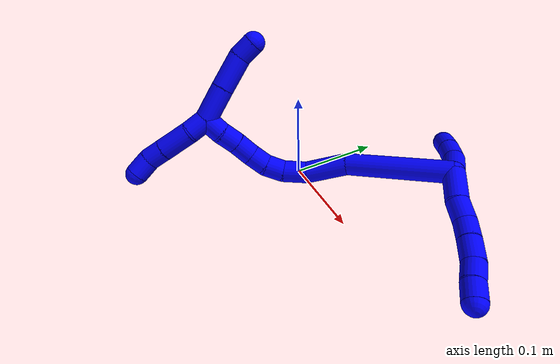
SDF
<sdf version="1.7">
 <world name="default">
  <model name="photoneo_s_sensor">
   <static>1</static>
   <pose>0 0 2 1.57079 1.57079 3.14159</pose>
   <link name="link">
    <inertial><mass>0.1</mass></inertial>
    <sensor name="sensor" type="depth">
     <update_rate>30</update_rate>
     <camera>
      <horizontal_fov>1.22</horizontal_fov>
      <image><width>1920</width><height>1200</height><format>B8G8R8</format></image>
      <clip><near>0.1</near><far>4</far></clip>
      <depth_camera><output>points</output></depth_camera>
     </camera>
     <plugin name="camera_plugin" filename="libgazebo_ros_depth_camera.so">
      <baseline>0.2</baseline>
      <alwaysOn>1</alwaysOn>
      <updateRate>0.0</updateRate>
      <cameraName>camera_ir</cameraName>
      <imageTopicName>/camera/color/image_raw</imageTopicName>
      <cameraInfoTopicName>/camera/color/camera_info</cameraInfoTopicName>
      <depthImageTopicName>/camera/depth/image_raw</depthImageTopicName>
      <depthImageCameraInfoTopicName>/camera/depth/camera_info</depthImageCameraInfoTopicName>
      <pointCloudTopicName>/camera/depth/points</pointCloudTopicName>
      <frameName>fr_optical</frameName>
      <pointCloudCutoff>0.1</pointCloudCutoff>
      <pointCloudCutoffMax>2.0</pointCloudCutoffMax>
      <distortionK1>0</distortionK1>
      <distortionK2>0</distortionK2>
      <distortionK3>0</distortionK3>
      <distortionT1>0</distortionT1>
      <distortionT2>0</distortionT2>
      <CxPrime>0</CxPrime>
      <Cx>0</Cx>
      <Cy>0</Cy>
      <focalLength>0</focalLength>
      <hackBaseline>0</hackBaseline>
     </plugin>
    </sensor>
   </link>
  </model>
  <model name="bin">
   <static>1</static>
   <link name="bottom">
    <collision name="collision-bottom">
     <pose>0 0 -0.01 0 -0 0</pose>
     <geometry><box><size>0.8 0.6 0.02</size></box></geometry>
     <surface>
      <friction><ode><mu>100</mu><mu2>100</mu2></ode></friction>
      <contact><collide_bitmask>65535</collide_bitmask></contact>
     </surface>
    </collision>
   </link>
   <link name="west_wall">
    <collision name="collision-west_wall">
     <pose>-0.41 0 0.1 0 -0 0</pose>
     <geometry><box><size>0.02 0.6 0.2</size></box></geometry>
     <surface>
      <friction><ode><mu>100</mu><mu2>100</mu2></ode></friction>
      <contact><collide_bitmask>65535</collide_bitmask></contact>
     </surface>
    </collision>
   </link>
   <link name="east_wall">
    <collision name="collision-east_wall">
     <pose>0.41 0 0.1 0 -0 0</pose>
     <geometry><box><size>0.02 0.6 0.2</size></box></geometry>
     <surface>
      <friction><ode><mu>100</mu><mu2>100</mu2></ode></friction>
      <contact><collide_bitmask>65535</collide_bitmask></contact>
     </surface>
    </collision>
   </link>
   <link name="south_wall">
    <collision name="collision-south_wall">
     <pose>0 -0.31 0.1 0 -0 0</pose>
     <geometry><box><size>0.8 0.02 0.2</size></box></geometry>
     <surface>
      <friction><ode><mu>100</mu><mu2>100</mu2></ode></friction>
      <contact><collide_bitmask>65535</collide_bitmask></contact>
     </surface>
    </collision>
   </link>
   <link name="north_wall">
    <collision name="collision-north_wall">
     <pose>0 0.31 0.1 0 -0 0</pose>
     <geometry><box><size>0.8 0.02 0.2</size></box></geometry>
     <surface>
      <friction><ode><mu>100</mu><mu2>100</mu2></ode></friction>
      <contact><collide_bitmask>65535</collide_bitmask></contact>
     </surface>
    </collision>
   </link>
  </model>
  <model name="1">
   <static>0</static>
   <link name="1">
    <collision name="collision-cylinder-e_1_2_8">
     <pose>0.006346 -0.000669 0.016731 0.039956 0.362286 0.007319</pose>
     <geometry><cylinder><radius>0.0125</radius><length>0.035814</length></cylinder></geometry>
     <surface>
      <friction><ode><mu>1.16</mu><mu2>1.16</mu2><slip1>0</slip1><slip2>0</slip2></ode></friction>
      <contact><ode><kp>1e+06</kp><kd>1</kd><max_vel>0</max_vel><min_depth>0.001</min_depth></ode></contact>
     </surface>
    </collision>
    <visual name="visual-cylinder-e_1_2_8">
     <pose>0.006346 -0.000669 0.016731 0.039956 0.362286 0.007319</pose>
     <geometry><cylinder><radius>0.0125</radius><length>0.035814</length></cylinder></geometry>
     <material><ambient>0 0 1 1</ambient></material>
    </visual>
    <collision name="collision-cylinder-e_2_8_9">
     <pose>0.018428 0.000308 0.044146 -0.152867 0.487787 -0.03811</pose>
     <geometry><cylinder><radius>0.0125</radius><length>0.024473</length></cylinder></geometry>
     <surface>
      <friction><ode><mu>1.16</mu><mu2>1.16</mu2><slip1>0</slip1><slip2>0</slip2></ode></friction>
      <contact><ode><kp>1e+06</kp><kd>1</kd><max_vel>0</max_vel><min_depth>0.001</min_depth></ode></contact>
     </surface>
    </collision>
    <visual name="visual-cylinder-e_2_8_9">
     <pose>0.018428 0.000308 0.044146 -0.152867 0.487787 -0.03811</pose>
     <geometry><cylinder><radius>0.0125</radius><length>0.024473</length></cylinder></geometry>
     <material><ambient>0 0 1 1</ambient></material>
    </visual>
    <collision name="collision-cylinder-e_3_9_10">
     <pose>0.026572 0.002994 0.065812 -0.094394 0.215057 -0.010197</pose>
     <geometry><cylinder><radius>0.0125</radius><length>0.022585</length></cylinder></geometry>
     <surface>
      <friction><ode><mu>1.16</mu><mu2>1.16</mu2><slip1>0</slip1><slip2>0</slip2></ode></friction>
      <contact><ode><kp>1e+06</kp><kd>1</kd><max_vel>0</max_vel><min_depth>0.001</min_depth></ode></contact>
     </surface>
    </collision>
    <visual name="visual-cylinder-e_3_9_10">
     <pose>0.026572 0.002994 0.065812 -0.094394 0.215057 -0.010197</pose>
     <geometry><cylinder><radius>0.0125</radius><length>0.022585</length></cylinder></geometry>
     <material><ambient>0 0 1 1</ambient></material>
    </visual>
    <collision name="collision-cylinder-e_4_10_11">
     <pose>0.032382 0.004478 0.08911 -0.036051 0.269207 -0.004883</pose>
     <geometry><cylinder><radius>0.0125</radius><length>0.025567</length></cylinder></geometry>
     <surface>
      <friction><ode><mu>1.16</mu><mu2>1.16</mu2><slip1>0</slip1><slip2>0</slip2></ode></friction>
      <contact><ode><kp>1e+06</kp><kd>1</kd><max_vel>0</max_vel><min_depth>0.001</min_depth></ode></contact>
     </surface>
    </collision>
    <visual name="visual-cylinder-e_4_10_11">
     <pose>0.032382 0.004478 0.08911 -0.036051 0.269207 -0.004883</pose>
     <geometry><cylinder><radius>0.0125</radius><length>0.025567</length></cylinder></geometry>
     <material><ambient>0 0 1 1</ambient></material>
    </visual>
    <collision name="collision-cylinder-e_5_11_12">
     <pose>0.036731 0.003902 0.111911 0.097014 0.089825 0.004363</pose>
     <geometry><cylinder><radius>0.0125</radius><length>0.021157</length></cylinder></geometry>
     <surface>
      <friction><ode><mu>1.16</mu><mu2>1.16</mu2><slip1>0</slip1><slip2>0</slip2></ode></friction>
      <contact><ode><kp>1e+06</kp><kd>1</kd><max_vel>0</max_vel><min_depth>0.001</min_depth></ode></contact>
     </surface>
    </collision>
    <visual name="visual-cylinder-e_5_11_12">
     <pose>0.036731 0.003902 0.111911 0.097014 0.089825 0.004363</pose>
     <geometry><cylinder><radius>0.0125</radius><length>0.021157</length></cylinder></geometry>
     <material><ambient>0 0 1 1</ambient></material>
    </visual>
    <collision name="collision-cylinder-e_6_12_6">
     <pose>0.039749 0.002607 0.132384 0.027414 0.204215 0.002809</pose>
     <geometry><cylinder><radius>0.0125</radius><length>0.020405</length></cylinder></geometry>
     <surface>
      <friction><ode><mu>1.16</mu><mu2>1.16</mu2><slip1>0</slip1><slip2>0</slip2></ode></friction>
      <contact><ode><kp>1e+06</kp><kd>1</kd><max_vel>0</max_vel><min_depth>0.001</min_depth></ode></contact>
     </surface>
    </collision>
    <visual name="visual-cylinder-e_6_12_6">
     <pose>0.039749 0.002607 0.132384 0.027414 0.204215 0.002809</pose>
     <geometry><cylinder><radius>0.0125</radius><length>0.020405</length></cylinder></geometry>
     <material><ambient>0 0 1 1</ambient></material>
    </visual>
    <collision name="collision-cylinder-e_1_2_13">
     <pose>0.007604 -0.00314 -0.023133 3.00669 0.31488 2.33695</pose>
     <geometry><cylinder><radius>0.0125</radius><length>0.049105</length></cylinder></geometry>
     <surface>
      <friction><ode><mu>1.16</mu><mu2>1.16</mu2><slip1>0</slip1><slip2>0</slip2></ode></friction>
      <contact><ode><kp>1e+06</kp><kd>1</kd><max_vel>0</max_vel><min_depth>0.001</min_depth></ode></contact>
     </surface>
    </collision>
    <visual name="visual-cylinder-e_1_2_13">
     <pose>0.007604 -0.00314 -0.023133 3.00669 0.31488 2.33695</pose>
     <geometry><cylinder><radius>0.0125</radius><length>0.049105</length></cylinder></geometry>
     <material><ambient>0 0 1 1</ambient></material>
    </visual>
    <collision name="collision-cylinder-e_2_13_14">
     <pose>0.015385 -0.009791 -0.060077 2.8926 0.012424 0.099201</pose>
     <geometry><cylinder><radius>0.0125</radius><length>0.028501</length></cylinder></geometry>
     <surface>
      <friction><ode><mu>1.16</mu><mu2>1.16</mu2><slip1>0</slip1><slip2>0</slip2></ode></friction>
      <contact><ode><kp>1e+06</kp><kd>1</kd><max_vel>0</max_vel><min_depth>0.001</min_depth></ode></contact>
     </surface>
    </collision>
    <visual name="visual-cylinder-e_2_13_14">
     <pose>0.015385 -0.009791 -0.060077 2.8926 0.012424 0.099201</pose>
     <geometry><cylinder><radius>0.0125</radius><length>0.028501</length></cylinder></geometry>
     <material><ambient>0 0 1 1</ambient></material>
    </visual>
    <collision name="collision-cylinder-e_3_14_5">
     <pose>0.015821 -0.01702 -0.084445 2.80308 0.023171 0.135388</pose>
     <geometry><cylinder><radius>0.0125</radius><length>0.022394</length></cylinder></geometry>
     <surface>
      <friction><ode><mu>1.16</mu><mu2>1.16</mu2><slip1>0</slip1><slip2>0</slip2></ode></friction>
      <contact><ode><kp>1e+06</kp><kd>1</kd><max_vel>0</max_vel><min_depth>0.001</min_depth></ode></contact>
     </surface>
    </collision>
    <visual name="visual-cylinder-e_3_14_5">
     <pose>0.015821 -0.01702 -0.084445 2.80308 0.023171 0.135388</pose>
     <geometry><cylinder><radius>0.0125</radius><length>0.022394</length></cylinder></geometry>
     <material><ambient>0 0 1 1</ambient></material>
    </visual>
    <collision name="collision-cylinder-e_1_2_15">
     <pose>-0.02603 -0.052419 -0.002749 1.62319 -0.460362 -0.484201</pose>
     <geometry><cylinder><radius>0.0125</radius><length>0.117181</length></cylinder></geometry>
     <surface>
      <friction><ode><mu>1.16</mu><mu2>1.16</mu2><slip1>0</slip1><slip2>0</slip2></ode></friction>
      <contact><ode><kp>1e+06</kp><kd>1</kd><max_vel>0</max_vel><min_depth>0.001</min_depth></ode></contact>
     </surface>
    </collision>
    <visual name="visual-cylinder-e_1_2_15">
     <pose>-0.02603 -0.052419 -0.002749 1.62319 -0.460362 -0.484201</pose>
     <geometry><cylinder><radius>0.0125</radius><length>0.117181</length></cylinder></geometry>
     <material><ambient>0 0 1 1</ambient></material>
    </visual>
    <collision name="collision-cylinder-e_2_15_16">
     <pose>-0.058532 -0.127364 -0.001132 1.37937 -0.274894 -0.227191</pose>
     <geometry><cylinder><radius>0.0125</radius><length>0.047682</length></cylinder></geometry>
     <surface>
      <friction><ode><mu>1.16</mu><mu2>1.16</mu2><slip1>0</slip1><slip2>0</slip2></ode></friction>
      <contact><ode><kp>1e+06</kp><kd>1</kd><max_vel>0</max_vel><min_depth>0.001</min_depth></ode></contact>
     </surface>
    </collision>
    <visual name="visual-cylinder-e_2_15_16">
     <pose>-0.058532 -0.127364 -0.001132 1.37937 -0.274894 -0.227191</pose>
     <geometry><cylinder><radius>0.0125</radius><length>0.047682</length></cylinder></geometry>
     <material><ambient>0 0 1 1</ambient></material>
    </visual>
    <collision name="collision-cylinder-e_3_16_17">
     <pose>-0.072789 -0.160958 0.005941 1.33086 -0.599469 -0.475915</pose>
     <geometry><cylinder><radius>0.0125</radius><length>0.0276</length></cylinder></geometry>
     <surface>
      <friction><ode><mu>1.16</mu><mu2>1.16</mu2><slip1>0</slip1><slip2>0</slip2></ode></friction>
      <contact><ode><kp>1e+06</kp><kd>1</kd><max_vel>0</max_vel><min_depth>0.001</min_depth></ode></contact>
     </surface>
    </collision>
    <visual name="visual-cylinder-e_3_16_17">
     <pose>-0.072789 -0.160958 0.005941 1.33086 -0.599469 -0.475915</pose>
     <geometry><cylinder><radius>0.0125</radius><length>0.0276</length></cylinder></geometry>
     <material><ambient>0 0 1 1</ambient></material>
    </visual>
    <collision name="collision-cylinder-e_4_17_18">
     <pose>-0.089246 -0.178279 0.01034 1.30678 -0.929168 -0.732717</pose>
     <geometry><cylinder><radius>0.0125</radius><length>0.021647</length></cylinder></geometry>
     <surface>
      <friction><ode><mu>1.16</mu><mu2>1.16</mu2><slip1>0</slip1><slip2>0</slip2></ode></friction>
      <contact><ode><kp>1e+06</kp><kd>1</kd><max_vel>0</max_vel><min_depth>0.001</min_depth></ode></contact>
     </surface>
    </collision>
    <visual name="visual-cylinder-e_4_17_18">
     <pose>-0.089246 -0.178279 0.01034 1.30678 -0.929168 -0.732717</pose>
     <geometry><cylinder><radius>0.0125</radius><length>0.021647</length></cylinder></geometry>
     <material><ambient>0 0 1 1</ambient></material>
    </visual>
    <collision name="collision-cylinder-e_5_18_19">
     <pose>-0.107455 -0.188672 0.011764 1.63487 -1.1606 -1.22012</pose>
     <geometry><cylinder><radius>0.0125</radius><length>0.020802</length></cylinder></geometry>
     <surface>
      <friction><ode><mu>1.16</mu><mu2>1.16</mu2><slip1>0</slip1><slip2>0</slip2></ode></friction>
      <contact><ode><kp>1e+06</kp><kd>1</kd><max_vel>0</max_vel><min_depth>0.001</min_depth></ode></contact>
     </surface>
    </collision>
    <visual name="visual-cylinder-e_5_18_19">
     <pose>-0.107455 -0.188672 0.011764 1.63487 -1.1606 -1.22012</pose>
     <geometry><cylinder><radius>0.0125</radius><length>0.020802</length></cylinder></geometry>
     <material><ambient>0 0 1 1</ambient></material>
    </visual>
    <collision name="collision-cylinder-e_6_19_20">
     <pose>-0.127767 -0.195191 0.012655 1.11845 -1.32996 -0.912452</pose>
     <geometry><cylinder><radius>0.0125</radius><length>0.02219</length></cylinder></geometry>
     <surface>
      <friction><ode><mu>1.16</mu><mu2>1.16</mu2><slip1>0</slip1><slip2>0</slip2></ode></friction>
      <contact><ode><kp>1e+06</kp><kd>1</kd><max_vel>0</max_vel><min_depth>0.001</min_depth></ode></contact>
     </surface>
    </collision>
    <visual name="visual-cylinder-e_6_19_20">
     <pose>-0.127767 -0.195191 0.012655 1.11845 -1.32996 -0.912452</pose>
     <geometry><cylinder><radius>0.0125</radius><length>0.02219</length></cylinder></geometry>
     <material><ambient>0 0 1 1</ambient></material>
    </visual>
    <collision name="collision-cylinder-e_7_20_21">
     <pose>-0.148463 -0.200295 0.01563 0.982206 -1.25195 -0.737882</pose>
     <geometry><cylinder><radius>0.0125</radius><length>0.020895</length></cylinder></geometry>
     <surface>
      <friction><ode><mu>1.16</mu><mu2>1.16</mu2><slip1>0</slip1><slip2>0</slip2></ode></friction>
      <contact><ode><kp>1e+06</kp><kd>1</kd><max_vel>0</max_vel><min_depth>0.001</min_depth></ode></contact>
     </surface>
    </collision>
    <visual name="visual-cylinder-e_7_20_21">
     <pose>-0.148463 -0.200295 0.01563 0.982206 -1.25195 -0.737882</pose>
     <geometry><cylinder><radius>0.0125</radius><length>0.020895</length></cylinder></geometry>
     <material><ambient>0 0 1 1</ambient></material>
    </visual>
    <collision name="collision-cylinder-e_8_21_1">
     <pose>-0.169065 -0.205647 0.017649 1.49475 -1.32885 -1.25568</pose>
     <geometry><cylinder><radius>0.0125</radius><length>0.022004</length></cylinder></geometry>
     <surface>
      <friction><ode><mu>1.16</mu><mu2>1.16</mu2><slip1>0</slip1><slip2>0</slip2></ode></friction>
      <contact><ode><kp>1e+06</kp><kd>1</kd><max_vel>0</max_vel><min_depth>0.001</min_depth></ode></contact>
     </surface>
    </collision>
    <visual name="visual-cylinder-e_8_21_1">
     <pose>-0.169065 -0.205647 0.017649 1.49475 -1.32885 -1.25568</pose>
     <geometry><cylinder><radius>0.0125</radius><length>0.022004</length></cylinder></geometry>
     <material><ambient>0 0 1 1</ambient></material>
    </visual>
    <collision name="collision-cylinder-e_1_1_22">
     <pose>-0.188411 -0.19392 0.007449 -2.19774 -0.454618 0.851016</pose>
     <geometry><cylinder><radius>0.0125</radius><length>0.039463</length></cylinder></geometry>
     <surface>
      <friction><ode><mu>1.16</mu><mu2>1.16</mu2><slip1>0</slip1><slip2>0</slip2></ode></friction>
      <contact><ode><kp>1e+06</kp><kd>1</kd><max_vel>0</max_vel><min_depth>0.001</min_depth></ode></contact>
     </surface>
    </collision>
    <visual name="visual-cylinder-e_1_1_22">
     <pose>-0.188411 -0.19392 0.007449 -2.19774 -0.454618 0.851016</pose>
     <geometry><cylinder><radius>0.0125</radius><length>0.039463</length></cylinder></geometry>
     <material><ambient>0 0 1 1</ambient></material>
    </visual>
    <collision name="collision-cylinder-e_2_22_23">
     <pose>-0.205221 -0.165454 -0.013724 -2.22285 -0.430167 0.831753</pose>
     <geometry><cylinder><radius>0.0125</radius><length>0.039063</length></cylinder></geometry>
     <surface>
      <friction><ode><mu>1.16</mu><mu2>1.16</mu2><slip1>0</slip1><slip2>0</slip2></ode></friction>
      <contact><ode><kp>1e+06</kp><kd>1</kd><max_vel>0</max_vel><min_depth>0.001</min_depth></ode></contact>
     </surface>
    </collision>
    <visual name="visual-cylinder-e_2_22_23">
     <pose>-0.205221 -0.165454 -0.013724 -2.22285 -0.430167 0.831753</pose>
     <geometry><cylinder><radius>0.0125</radius><length>0.039063</length></cylinder></geometry>
     <material><ambient>0 0 1 1</ambient></material>
    </visual>
    <collision name="collision-cylinder-e_3_23_4">
     <pose>-0.215481 -0.141726 -0.028775 -1.98942 -0.198282 0.303884</pose>
     <geometry><cylinder><radius>0.0125</radius><length>0.021474</length></cylinder></geometry>
     <surface>
      <friction><ode><mu>1.16</mu><mu2>1.16</mu2><slip1>0</slip1><slip2>0</slip2></ode></friction>
      <contact><ode><kp>1e+06</kp><kd>1</kd><max_vel>0</max_vel><min_depth>0.001</min_depth></ode></contact>
     </surface>
    </collision>
    <visual name="visual-cylinder-e_3_23_4">
     <pose>-0.215481 -0.141726 -0.028775 -1.98942 -0.198282 0.303884</pose>
     <geometry><cylinder><radius>0.0125</radius><length>0.021474</length></cylinder></geometry>
     <material><ambient>0 0 1 1</ambient></material>
    </visual>
    <collision name="collision-cylinder-e_1_1_24">
     <pose>-0.17941 -0.217434 0.024534 0.940246 0.029734 0.015109</pose>
     <geometry><cylinder><radius>0.0125</radius><length>0.022686</length></cylinder></geometry>
     <surface>
      <friction><ode><mu>1.16</mu><mu2>1.16</mu2><slip1>0</slip1><slip2>0</slip2></ode></friction>
      <contact><ode><kp>1e+06</kp><kd>1</kd><max_vel>0</max_vel><min_depth>0.001</min_depth></ode></contact>
     </surface>
    </collision>
    <visual name="visual-cylinder-e_1_1_24">
     <pose>-0.17941 -0.217434 0.024534 0.940246 0.029734 0.015109</pose>
     <geometry><cylinder><radius>0.0125</radius><length>0.022686</length></cylinder></geometry>
     <material><ambient>0 0 1 1</ambient></material>
    </visual>
    <collision name="collision-cylinder-e_2_24_25">
     <pose>-0.178924 -0.24274 0.03837 1.15389 0.008397 0.005465</pose>
     <geometry><cylinder><radius>0.0125</radius><length>0.035323</length></cylinder></geometry>
     <surface>
      <friction><ode><mu>1.16</mu><mu2>1.16</mu2><slip1>0</slip1><slip2>0</slip2></ode></friction>
      <contact><ode><kp>1e+06</kp><kd>1</kd><max_vel>0</max_vel><min_depth>0.001</min_depth></ode></contact>
     </surface>
    </collision>
    <visual name="visual-cylinder-e_2_24_25">
     <pose>-0.178924 -0.24274 0.03837 1.15389 0.008397 0.005465</pose>
     <geometry><cylinder><radius>0.0125</radius><length>0.035323</length></cylinder></geometry>
     <material><ambient>0 0 1 1</ambient></material>
    </visual>
    <collision name="collision-cylinder-e_3_25_26">
     <pose>-0.178675 -0.268261 0.049573 1.16284 0.009917 0.006518</pose>
     <geometry><cylinder><radius>0.0125</radius><length>0.020422</length></cylinder></geometry>
     <surface>
      <friction><ode><mu>1.16</mu><mu2>1.16</mu2><slip1>0</slip1><slip2>0</slip2></ode></friction>
      <contact><ode><kp>1e+06</kp><kd>1</kd><max_vel>0</max_vel><min_depth>0.001</min_depth></ode></contact>
     </surface>
    </collision>
    <visual name="visual-cylinder-e_3_25_26">
     <pose>-0.178675 -0.268261 0.049573 1.16284 0.009917 0.006518</pose>
     <geometry><cylinder><radius>0.0125</radius><length>0.020422</length></cylinder></geometry>
     <material><ambient>0 0 1 1</ambient></material>
    </visual>
    <collision name="collision-cylinder-e_4_26_3">
     <pose>-0.176183 -0.285998 0.059997 0.919626 0.223503 0.111031</pose>
     <geometry><cylinder><radius>0.0125</radius><length>0.021568</length></cylinder></geometry>
     <surface>
      <friction><ode><mu>1.16</mu><mu2>1.16</mu2><slip1>0</slip1><slip2>0</slip2></ode></friction>
      <contact><ode><kp>1e+06</kp><kd>1</kd><max_vel>0</max_vel><min_depth>0.001</min_depth></ode></contact>
     </surface>
    </collision>
    <visual name="visual-cylinder-e_4_26_3">
     <pose>-0.176183 -0.285998 0.059997 0.919626 0.223503 0.111031</pose>
     <geometry><cylinder><radius>0.0125</radius><length>0.021568</length></cylinder></geometry>
     <material><ambient>0 0 1 1</ambient></material>
    </visual>
    <collision name="collision-sphere-3">
     <pose>-0.173793 -0.294362 0.066371 0 -0 0</pose>
     <geometry><sphere><radius>0.0125</radius></sphere></geometry>
     <surface>
      <friction><ode><mu>1.16</mu><mu2>1.16</mu2><slip1>0</slip1><slip2>0</slip2></ode></friction>
      <contact><ode><kp>1e+06</kp><kd>1</kd><max_vel>0</max_vel><min_depth>0.001</min_depth></ode></contact>
     </surface>
    </collision>
    <visual name="visual-sphere-3">
     <pose>-0.173793 -0.294362 0.066371 0 -0 0</pose>
     <geometry><sphere><radius>0.0125</radius></sphere></geometry>
     <material><ambient>0 0 1 1</ambient></material>
    </visual>
    <collision name="collision-sphere-26">
     <pose>-0.178573 -0.277633 0.053623 0 -0 0</pose>
     <geometry><sphere><radius>0.0125</radius></sphere></geometry>
     <surface>
      <friction><ode><mu>1.16</mu><mu2>1.16</mu2><slip1>0</slip1><slip2>0</slip2></ode></friction>
      <contact><ode><kp>1e+06</kp><kd>1</kd><max_vel>0</max_vel><min_depth>0.001</min_depth></ode></contact>
     </surface>
    </collision>
    <visual name="visual-sphere-26">
     <pose>-0.178573 -0.277633 0.053623 0 -0 0</pose>
     <geometry><sphere><radius>0.0125</radius></sphere></geometry>
     <material><ambient>0 0 1 1</ambient></material>
    </visual>
    <collision name="collision-sphere-25">
     <pose>-0.178776 -0.258888 0.045522 0 -0 0</pose>
     <geometry><sphere><radius>0.0125</radius></sphere></geometry>
     <surface>
      <friction><ode><mu>1.16</mu><mu2>1.16</mu2><slip1>0</slip1><slip2>0</slip2></ode></friction>
      <contact><ode><kp>1e+06</kp><kd>1</kd><max_vel>0</max_vel><min_depth>0.001</min_depth></ode></contact>
     </surface>
    </collision>
    <visual name="visual-sphere-25">
     <pose>-0.178776 -0.258888 0.045522 0 -0 0</pose>
     <geometry><sphere><radius>0.0125</radius></sphere></geometry>
     <material><ambient>0 0 1 1</ambient></material>
    </visual>
    <collision name="collision-sphere-24">
     <pose>-0.179073 -0.226591 0.031219 0 -0 0</pose>
     <geometry><sphere><radius>0.0125</radius></sphere></geometry>
     <surface>
      <friction><ode><mu>1.16</mu><mu2>1.16</mu2><slip1>0</slip1><slip2>0</slip2></ode></friction>
      <contact><ode><kp>1e+06</kp><kd>1</kd><max_vel>0</max_vel><min_depth>0.001</min_depth></ode></contact>
     </surface>
    </collision>
    <visual name="visual-sphere-24">
     <pose>-0.179073 -0.226591 0.031219 0 -0 0</pose>
     <geometry><sphere><radius>0.0125</radius></sphere></geometry>
     <material><ambient>0 0 1 1</ambient></material>
    </visual>
    <collision name="collision-sphere-4">
     <pose>-0.217596 -0.132108 -0.033054 0 -0 0</pose>
     <geometry><sphere><radius>0.0125</radius></sphere></geometry>
     <surface>
      <friction><ode><mu>1.16</mu><mu2>1.16</mu2><slip1>0</slip1><slip2>0</slip2></ode></friction>
      <contact><ode><kp>1e+06</kp><kd>1</kd><max_vel>0</max_vel><min_depth>0.001</min_depth></ode></contact>
     </surface>
    </collision>
    <visual name="visual-sphere-4">
     <pose>-0.217596 -0.132108 -0.033054 0 -0 0</pose>
     <geometry><sphere><radius>0.0125</radius></sphere></geometry>
     <material><ambient>0 0 1 1</ambient></material>
    </visual>
    <collision name="collision-sphere-23">
     <pose>-0.213366 -0.151343 -0.024496 0 -0 0</pose>
     <geometry><sphere><radius>0.0125</radius></sphere></geometry>
     <surface>
      <friction><ode><mu>1.16</mu><mu2>1.16</mu2><slip1>0</slip1><slip2>0</slip2></ode></friction>
      <contact><ode><kp>1e+06</kp><kd>1</kd><max_vel>0</max_vel><min_depth>0.001</min_depth></ode></contact>
     </surface>
    </collision>
    <visual name="visual-sphere-23">
     <pose>-0.213366 -0.151343 -0.024496 0 -0 0</pose>
     <geometry><sphere><radius>0.0125</radius></sphere></geometry>
     <material><ambient>0 0 1 1</ambient></material>
    </visual>
    <collision name="collision-sphere-22">
     <pose>-0.197076 -0.179564 -0.002951 0 -0 0</pose>
     <geometry><sphere><radius>0.0125</radius></sphere></geometry>
     <surface>
      <friction><ode><mu>1.16</mu><mu2>1.16</mu2><slip1>0</slip1><slip2>0</slip2></ode></friction>
      <contact><ode><kp>1e+06</kp><kd>1</kd><max_vel>0</max_vel><min_depth>0.001</min_depth></ode></contact>
     </surface>
    </collision>
    <visual name="visual-sphere-22">
     <pose>-0.197076 -0.179564 -0.002951 0 -0 0</pose>
     <geometry><sphere><radius>0.0125</radius></sphere></geometry>
     <material><ambient>0 0 1 1</ambient></material>
    </visual>
    <collision name="collision-sphere-1">
     <pose>-0.179747 -0.208276 0.017849 0 -0 0</pose>
     <geometry><sphere><radius>0.0125</radius></sphere></geometry>
     <surface>
      <friction><ode><mu>1.16</mu><mu2>1.16</mu2><slip1>0</slip1><slip2>0</slip2></ode></friction>
      <contact><ode><kp>1e+06</kp><kd>1</kd><max_vel>0</max_vel><min_depth>0.001</min_depth></ode></contact>
     </surface>
    </collision>
    <visual name="visual-sphere-1">
     <pose>-0.179747 -0.208276 0.017849 0 -0 0</pose>
     <geometry><sphere><radius>0.0125</radius></sphere></geometry>
     <material><ambient>0 0 1 1</ambient></material>
    </visual>
    <collision name="collision-sphere-21">
     <pose>-0.158384 -0.203019 0.017449 0 -0 0</pose>
     <geometry><sphere><radius>0.0125</radius></sphere></geometry>
     <surface>
      <friction><ode><mu>1.16</mu><mu2>1.16</mu2><slip1>0</slip1><slip2>0</slip2></ode></friction>
      <contact><ode><kp>1e+06</kp><kd>1</kd><max_vel>0</max_vel><min_depth>0.001</min_depth></ode></contact>
     </surface>
    </collision>
    <visual name="visual-sphere-21">
     <pose>-0.158384 -0.203019 0.017449 0 -0 0</pose>
     <geometry><sphere><radius>0.0125</radius></sphere></geometry>
     <material><ambient>0 0 1 1</ambient></material>
    </visual>
    <collision name="collision-sphere-12">
     <pose>0.03768 0.002881 0.122397 0 -0 0</pose>
     <geometry><sphere><radius>0.0125</radius></sphere></geometry>
     <surface>
      <friction><ode><mu>1.16</mu><mu2>1.16</mu2><slip1>0</slip1><slip2>0</slip2></ode></friction>
      <contact><ode><kp>1e+06</kp><kd>1</kd><max_vel>0</max_vel><min_depth>0.001</min_depth></ode></contact>
     </surface>
    </collision>
    <visual name="visual-sphere-12">
     <pose>0.03768 0.002881 0.122397 0 -0 0</pose>
     <geometry><sphere><radius>0.0125</radius></sphere></geometry>
     <material><ambient>0 0 1 1</ambient></material>
    </visual>
    <collision name="collision-sphere-11">
     <pose>0.035782 0.004922 0.101425 0 -0 0</pose>
     <geometry><sphere><radius>0.0125</radius></sphere></geometry>
     <surface>
      <friction><ode><mu>1.16</mu><mu2>1.16</mu2><slip1>0</slip1><slip2>0</slip2></ode></friction>
      <contact><ode><kp>1e+06</kp><kd>1</kd><max_vel>0</max_vel><min_depth>0.001</min_depth></ode></contact>
     </surface>
    </collision>
    <visual name="visual-sphere-11">
     <pose>0.035782 0.004922 0.101425 0 -0 0</pose>
     <geometry><sphere><radius>0.0125</radius></sphere></geometry>
     <material><ambient>0 0 1 1</ambient></material>
    </visual>
    <collision name="collision-sphere-10">
     <pose>0.028982 0.004034 0.076795 0 -0 0</pose>
     <geometry><sphere><radius>0.0125</radius></sphere></geometry>
     <surface>
      <friction><ode><mu>1.16</mu><mu2>1.16</mu2><slip1>0</slip1><slip2>0</slip2></ode></friction>
      <contact><ode><kp>1e+06</kp><kd>1</kd><max_vel>0</max_vel><min_depth>0.001</min_depth></ode></contact>
     </surface>
    </collision>
    <visual name="visual-sphere-10">
     <pose>0.028982 0.004034 0.076795 0 -0 0</pose>
     <geometry><sphere><radius>0.0125</radius></sphere></geometry>
     <material><ambient>0 0 1 1</ambient></material>
    </visual>
    <collision name="collision-sphere-9">
     <pose>0.024163 0.001954 0.054829 0 -0 0</pose>
     <geometry><sphere><radius>0.0125</radius></sphere></geometry>
     <surface>
      <friction><ode><mu>1.16</mu><mu2>1.16</mu2><slip1>0</slip1><slip2>0</slip2></ode></friction>
      <contact><ode><kp>1e+06</kp><kd>1</kd><max_vel>0</max_vel><min_depth>0.001</min_depth></ode></contact>
     </surface>
    </collision>
    <visual name="visual-sphere-9">
     <pose>0.024163 0.001954 0.054829 0 -0 0</pose>
     <geometry><sphere><radius>0.0125</radius></sphere></geometry>
     <material><ambient>0 0 1 1</ambient></material>
    </visual>
    <collision name="collision-sphere-2">
     <geometry><sphere><radius>0.0125</radius></sphere></geometry>
     <surface>
      <friction><ode><mu>1.16</mu><mu2>1.16</mu2><slip1>0</slip1><slip2>0</slip2></ode></friction>
      <contact><ode><kp>1e+06</kp><kd>1</kd><max_vel>0</max_vel><min_depth>0.001</min_depth></ode></contact>
     </surface>
    </collision>
    <visual name="visual-sphere-2">
     <geometry><sphere><radius>0.0125</radius></sphere></geometry>
     <material><ambient>0 0 1 1</ambient></material>
    </visual>
    <collision name="collision-sphere-19">
     <pose>-0.116993 -0.192811 0.011499 0 -0 0</pose>
     <geometry><sphere><radius>0.0125</radius></sphere></geometry>
     <surface>
      <friction><ode><mu>1.16</mu><mu2>1.16</mu2><slip1>0</slip1><slip2>0</slip2></ode></friction>
      <contact><ode><kp>1e+06</kp><kd>1</kd><max_vel>0</max_vel><min_depth>0.001</min_depth></ode></contact>
     </surface>
    </collision>
    <visual name="visual-sphere-19">
     <pose>-0.116993 -0.192811 0.011499 0 -0 0</pose>
     <geometry><sphere><radius>0.0125</radius></sphere></geometry>
     <material><ambient>0 0 1 1</ambient></material>
    </visual>
    <collision name="collision-sphere-8">
     <pose>0.012693 -0.001338 0.033463 0 -0 0</pose>
     <geometry><sphere><radius>0.0125</radius></sphere></geometry>
     <surface>
      <friction><ode><mu>1.16</mu><mu2>1.16</mu2><slip1>0</slip1><slip2>0</slip2></ode></friction>
      <contact><ode><kp>1e+06</kp><kd>1</kd><max_vel>0</max_vel><min_depth>0.001</min_depth></ode></contact>
     </surface>
    </collision>
    <visual name="visual-sphere-8">
     <pose>0.012693 -0.001338 0.033463 0 -0 0</pose>
     <geometry><sphere><radius>0.0125</radius></sphere></geometry>
     <material><ambient>0 0 1 1</ambient></material>
    </visual>
    <collision name="collision-sphere-6">
     <pose>0.041818 0.002333 0.142371 0 -0 0</pose>
     <geometry><sphere><radius>0.0125</radius></sphere></geometry>
     <surface>
      <friction><ode><mu>1.16</mu><mu2>1.16</mu2><slip1>0</slip1><slip2>0</slip2></ode></friction>
      <contact><ode><kp>1e+06</kp><kd>1</kd><max_vel>0</max_vel><min_depth>0.001</min_depth></ode></contact>
     </surface>
    </collision>
    <visual name="visual-sphere-6">
     <pose>0.041818 0.002333 0.142371 0 -0 0</pose>
     <geometry><sphere><radius>0.0125</radius></sphere></geometry>
     <material><ambient>0 0 1 1</ambient></material>
    </visual>
    <collision name="collision-sphere-13">
     <pose>0.015208 -0.00628 -0.046267 0 -0 0</pose>
     <geometry><sphere><radius>0.0125</radius></sphere></geometry>
     <surface>
      <friction><ode><mu>1.16</mu><mu2>1.16</mu2><slip1>0</slip1><slip2>0</slip2></ode></friction>
      <contact><ode><kp>1e+06</kp><kd>1</kd><max_vel>0</max_vel><min_depth>0.001</min_depth></ode></contact>
     </surface>
    </collision>
    <visual name="visual-sphere-13">
     <pose>0.015208 -0.00628 -0.046267 0 -0 0</pose>
     <geometry><sphere><radius>0.0125</radius></sphere></geometry>
     <material><ambient>0 0 1 1</ambient></material>
    </visual>
    <collision name="collision-sphere-14">
     <pose>0.015562 -0.013303 -0.073887 0 -0 0</pose>
     <geometry><sphere><radius>0.0125</radius></sphere></geometry>
     <surface>
      <friction><ode><mu>1.16</mu><mu2>1.16</mu2><slip1>0</slip1><slip2>0</slip2></ode></friction>
      <contact><ode><kp>1e+06</kp><kd>1</kd><max_vel>0</max_vel><min_depth>0.001</min_depth></ode></contact>
     </surface>
    </collision>
    <visual name="visual-sphere-14">
     <pose>0.015562 -0.013303 -0.073887 0 -0 0</pose>
     <geometry><sphere><radius>0.0125</radius></sphere></geometry>
     <material><ambient>0 0 1 1</ambient></material>
    </visual>
    <collision name="collision-sphere-5">
     <pose>0.016081 -0.020737 -0.095004 0 -0 0</pose>
     <geometry><sphere><radius>0.0125</radius></sphere></geometry>
     <surface>
      <friction><ode><mu>1.16</mu><mu2>1.16</mu2><slip1>0</slip1><slip2>0</slip2></ode></friction>
      <contact><ode><kp>1e+06</kp><kd>1</kd><max_vel>0</max_vel><min_depth>0.001</min_depth></ode></contact>
     </surface>
    </collision>
    <visual name="visual-sphere-5">
     <pose>0.016081 -0.020737 -0.095004 0 -0 0</pose>
     <geometry><sphere><radius>0.0125</radius></sphere></geometry>
     <material><ambient>0 0 1 1</ambient></material>
    </visual>
    <collision name="collision-sphere-15">
     <pose>-0.05206 -0.104837 -0.005497 0 -0 0</pose>
     <geometry><sphere><radius>0.0125</radius></sphere></geometry>
     <surface>
      <friction><ode><mu>1.16</mu><mu2>1.16</mu2><slip1>0</slip1><slip2>0</slip2></ode></friction>
      <contact><ode><kp>1e+06</kp><kd>1</kd><max_vel>0</max_vel><min_depth>0.001</min_depth></ode></contact>
     </surface>
    </collision>
    <visual name="visual-sphere-15">
     <pose>-0.05206 -0.104837 -0.005497 0 -0 0</pose>
     <geometry><sphere><radius>0.0125</radius></sphere></geometry>
     <material><ambient>0 0 1 1</ambient></material>
    </visual>
    <collision name="collision-sphere-16">
     <pose>-0.065003 -0.149891 0.003234 0 -0 0</pose>
     <geometry><sphere><radius>0.0125</radius></sphere></geometry>
     <surface>
      <friction><ode><mu>1.16</mu><mu2>1.16</mu2><slip1>0</slip1><slip2>0</slip2></ode></friction>
      <contact><ode><kp>1e+06</kp><kd>1</kd><max_vel>0</max_vel><min_depth>0.001</min_depth></ode></contact>
     </surface>
    </collision>
    <visual name="visual-sphere-16">
     <pose>-0.065003 -0.149891 0.003234 0 -0 0</pose>
     <geometry><sphere><radius>0.0125</radius></sphere></geometry>
     <material><ambient>0 0 1 1</ambient></material>
    </visual>
    <collision name="collision-sphere-17">
     <pose>-0.080575 -0.172026 0.008649 0 -0 0</pose>
     <geometry><sphere><radius>0.0125</radius></sphere></geometry>
     <surface>
      <friction><ode><mu>1.16</mu><mu2>1.16</mu2><slip1>0</slip1><slip2>0</slip2></ode></friction>
      <contact><ode><kp>1e+06</kp><kd>1</kd><max_vel>0</max_vel><min_depth>0.001</min_depth></ode></contact>
     </surface>
    </collision>
    <visual name="visual-sphere-17">
     <pose>-0.080575 -0.172026 0.008649 0 -0 0</pose>
     <geometry><sphere><radius>0.0125</radius></sphere></geometry>
     <material><ambient>0 0 1 1</ambient></material>
    </visual>
    <collision name="collision-sphere-18">
     <pose>-0.097917 -0.184532 0.01203 0 -0 0</pose>
     <geometry><sphere><radius>0.0125</radius></sphere></geometry>
     <surface>
      <friction><ode><mu>1.16</mu><mu2>1.16</mu2><slip1>0</slip1><slip2>0</slip2></ode></friction>
      <contact><ode><kp>1e+06</kp><kd>1</kd><max_vel>0</max_vel><min_depth>0.001</min_depth></ode></contact>
     </surface>
    </collision>
    <visual name="visual-sphere-18">
     <pose>-0.097917 -0.184532 0.01203 0 -0 0</pose>
     <geometry><sphere><radius>0.0125</radius></sphere></geometry>
     <material><ambient>0 0 1 1</ambient></material>
    </visual>
    <collision name="collision-sphere-20">
     <pose>-0.138542 -0.197571 0.013812 0 -0 0</pose>
     <geometry><sphere><radius>0.0125</radius></sphere></geometry>
     <surface>
      <friction><ode><mu>1.16</mu><mu2>1.16</mu2><slip1>0</slip1><slip2>0</slip2></ode></friction>
      <contact><ode><kp>1e+06</kp><kd>1</kd><max_vel>0</max_vel><min_depth>0.001</min_depth></ode></contact>
     </surface>
    </collision>
    <visual name="visual-sphere-20">
     <pose>-0.138542 -0.197571 0.013812 0 -0 0</pose>
     <geometry><sphere><radius>0.0125</radius></sphere></geometry>
     <material><ambient>0 0 1 1</ambient></material>
    </visual>
    <inertial>
     <pose>-0.072976 -0.107079 0.013846 0 -0 0</pose>
     <mass>0.75</mass>
     <inertia><ixx>9.7e-05</ixx><ixy>0</ixy><ixz>0</ixz><iyy>-9e-06</iyy><iyz>0</iyz><izz>0.000216</izz></inertia>
    </inertial>
   </link>
   <pose>0.124637 0.121769 0.040529 1.50419 0.981019 0.773408</pose>
  </model>
 </world>
</sdf>
